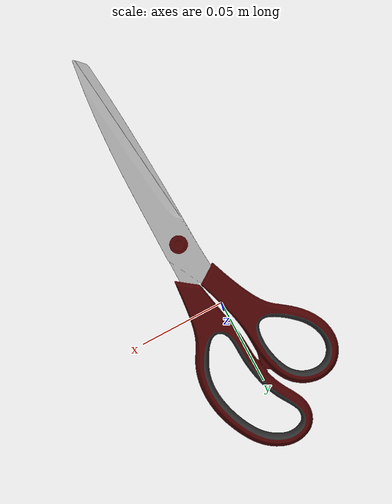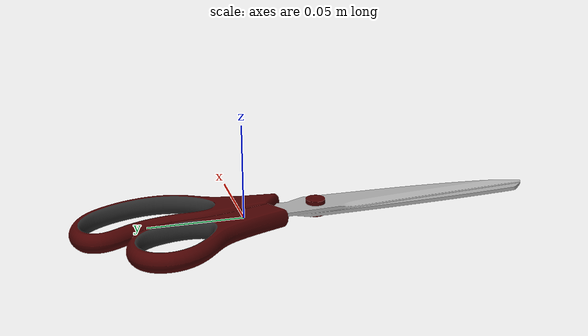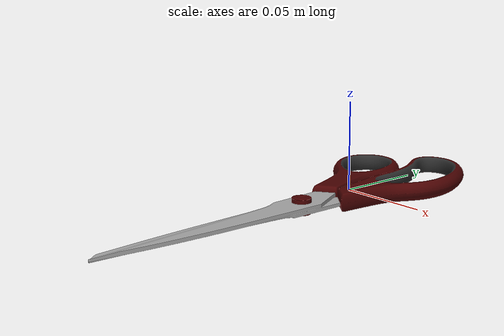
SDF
<?xml version="1.0" ?>
<sdf version="1.7">
  <model name="Scissors">
    <link name="link">
      <inertial>
        <pose>0 0 0.0 0 0 0</pose>
        <mass>0.001</mass>
        <inertia>
          <ixx>0.00001</ixx>
          <ixy>0</ixy>
          <ixz>0</ixz>
          <iyy>0.00001</iyy>
          <iyz>0</iyz>
          <izz>0.00001</izz>
        </inertia>
      </inertial>
      <collision name="collision">
        <pose>0.0 0.0 0.0 0 0 0</pose>
        <geometry>
          <mesh>
            <uri>scissors.dae</uri>
          </mesh>
        </geometry>
        <surface>
          <friction>
            <ode>
              <mu>1.0</mu>
              <mu2>1.0</mu2>
            </ode>
          </friction>
          <contact>
            <ode>
              <kp>10000000.0</kp>
              <kd>1.0</kd>
              <min_depth>0.0</min_depth>
              <max_vel>0.01</max_vel>
            </ode>
          </contact>
        </surface>
      </collision>
      <visual name="visual">
        <pose>0.0 0.0 0.0 0 0 0</pose>
        <geometry>
          <mesh>
            <uri>scissors.dae</uri>
          </mesh>
        </geometry>
        <material>
          <lighting>1</lighting>
          <shader type='pixel'/>
        </material>
        <transparency>0</transparency>
        <cast_shadows>1</cast_shadows>
      </visual>
    </link>
  </model>
</sdf>
